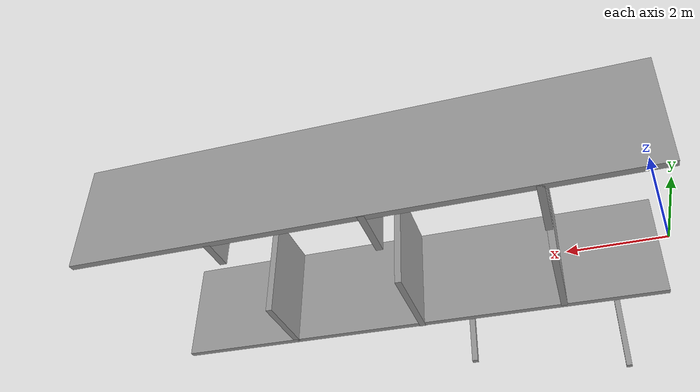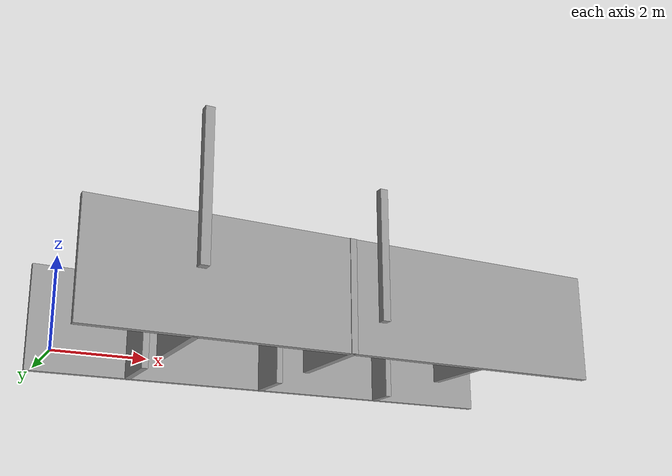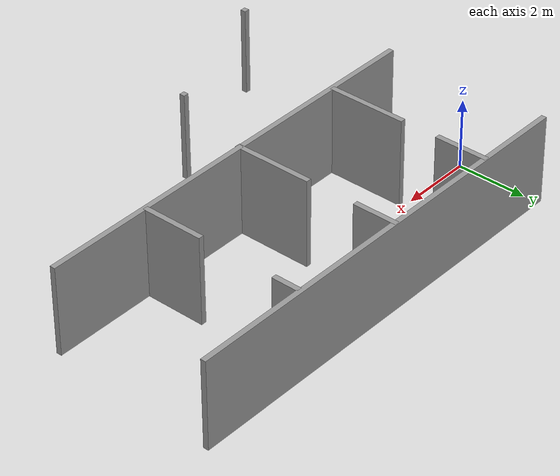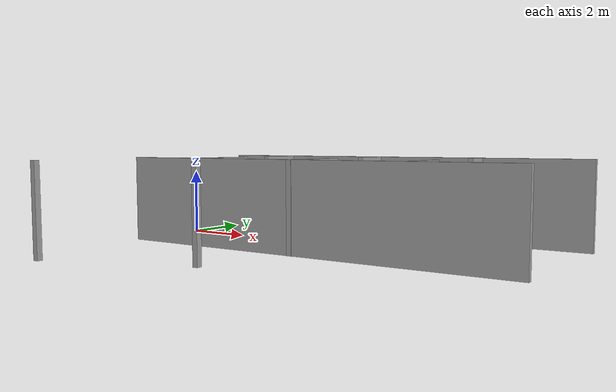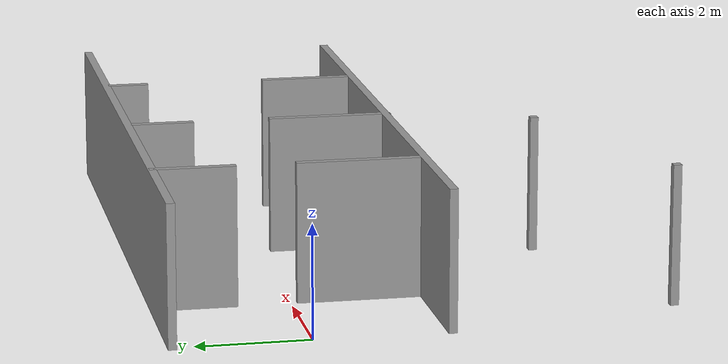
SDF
<?xml version='1.0'?>
<sdf version='1.7'>
  <model name='labirynt'>
    <pose>5.99977 -2.06429 0 0 -0 0</pose>
    <link name='Wall_26'>
      <collision name='Wall_26_Collision'>
        <geometry>
          <box>
            <size>0.15 0.15 2.5</size>
          </box>
        </geometry>
        <pose>0 0 1.25 0 -0 0</pose>
      </collision>
      <visual name='Wall_26_Visual'>
        <pose>0 0 1.25 0 -0 0</pose>
        <geometry>
          <box>
            <size>0.15 0.15 2.5</size>
          </box>
        </geometry>
        <material>
          <script>
            <uri>file://media/materials/scripts/gazebo.material</uri>
            <name>Gazebo/Grey</name>
          </script>
          <ambient>1 1 1 1</ambient>
        </material>
        <meta>
          <layer>0</layer>
        </meta>
      </visual>
      <pose>-1.16154 -2.90547 0 0 -0 0</pose>
    </link>
    <link name='Wall_29'>
      <collision name='Wall_29_Collision'>
        <geometry>
          <box>
            <size>0.15 0.15 2.5</size>
          </box>
        </geometry>
        <pose>0 0 1.25 0 -0 0</pose>
      </collision>
      <visual name='Wall_29_Visual'>
        <pose>0 0 1.25 0 -0 0</pose>
        <geometry>
          <box>
            <size>0.15 0.15 2.5</size>
          </box>
        </geometry>
        <material>
          <script>
            <uri>file://media/materials/scripts/gazebo.material</uri>
            <name>Gazebo/Grey</name>
          </script>
          <ambient>1 1 1 1</ambient>
        </material>
        <meta>
          <layer>0</layer>
        </meta>
      </visual>
      <pose>-5.1237 -4.4346 0 0 -0 0</pose>
    </link>
    <link name='Wall_49'>
      <collision name='Wall_49_Collision'>
        <geometry>
          <box>
            <size>12 0.15 2.5</size>
          </box>
        </geometry>
        <pose>0 0 1.25 0 -0 0</pose>
      </collision>
      <visual name='Wall_49_Visual'>
        <pose>0 0 1.25 0 -0 0</pose>
        <geometry>
          <box>
            <size>12 0.15 2.5</size>
          </box>
        </geometry>
        <material>
          <script>
            <uri>file://media/materials/scripts/gazebo.material</uri>
            <name>Gazebo/Grey</name>
          </script>
          <ambient>1 1 1 1</ambient>
        </material>
        <meta>
          <layer>0</layer>
        </meta>
      </visual>
      <pose>-0.085325 -0.313174 0 0 -0 0</pose>
    </link>
    <link name='Wall_53'>
      <collision name='Wall_53_Collision'>
        <geometry>
          <box>
            <size>12.25 0.15 2.5</size>
          </box>
        </geometry>
        <pose>0 0 1.25 0 -0 0</pose>
      </collision>
      <visual name='Wall_53_Visual'>
        <pose>0 0 1.25 0 -0 0</pose>
        <geometry>
          <box>
            <size>12.25 0.15 2.5</size>
          </box>
        </geometry>
        <material>
          <script>
            <uri>file://media/materials/scripts/gazebo.material</uri>
            <name>Gazebo/Grey</name>
          </script>
          <ambient>1 1 1 1</ambient>
        </material>
        <meta>
          <layer>0</layer>
        </meta>
      </visual>
      <pose>0 4.4346 0 0 -0 0</pose>
    </link>
    <link name='Wall_55'>
      <collision name='Wall_55_Collision'>
        <geometry>
          <box>
            <size>1.5 0.15 2.5</size>
          </box>
        </geometry>
        <pose>0 0 1.25 0 -0 0</pose>
      </collision>
      <visual name='Wall_55_Visual'>
        <pose>0 0 1.25 0 -0 0</pose>
        <geometry>
          <box>
            <size>1.5 0.15 2.5</size>
          </box>
        </geometry>
        <material>
          <script>
            <uri>file://media/materials/scripts/gazebo.material</uri>
            <name>Gazebo/Grey</name>
          </script>
          <ambient>1 1 1 1</ambient>
        </material>
        <meta>
          <layer>0</layer>
        </meta>
      </visual>
      <pose>-3.76207 3.73315 0 0 -0 -1.5708</pose>
    </link>
    <link name='Wall_58'>
      <collision name='Wall_58_Collision'>
        <geometry>
          <box>
            <size>2.25 0.15 2.5</size>
          </box>
        </geometry>
        <pose>0 0 1.25 0 -0 0</pose>
      </collision>
      <visual name='Wall_58_Visual'>
        <pose>0 0 1.25 0 -0 0</pose>
        <geometry>
          <box>
            <size>2.25 0.15 2.5</size>
          </box>
        </geometry>
        <material>
          <script>
            <uri>file://media/materials/scripts/gazebo.material</uri>
            <name>Gazebo/Grey</name>
          </script>
          <ambient>1 1 1 1</ambient>
        </material>
        <meta>
          <layer>0</layer>
        </meta>
      </visual>
      <pose>-3.75274 0.817185 0 0 -0 1.5708</pose>
    </link>
    <link name='Wall_75'>
      <collision name='Wall_75_Collision'>
        <geometry>
          <box>
            <size>1.25 0.15 2.5</size>
          </box>
        </geometry>
        <pose>0 0 1.25 0 -0 0</pose>
      </collision>
      <visual name='Wall_75_Visual'>
        <pose>0 0 1.25 0 -0 0</pose>
        <geometry>
          <box>
            <size>1.25 0.15 2.5</size>
          </box>
        </geometry>
        <material>
          <script>
            <uri>file://media/materials/scripts/gazebo.material</uri>
            <name>Gazebo/Grey</name>
          </script>
          <ambient>1 1 1 1</ambient>
        </material>
        <meta>
          <layer>0</layer>
        </meta>
      </visual>
      <pose>-0.36384 3.86056 0 0 -0 -1.5708</pose>
    </link>
    <link name='Wall_80'>
      <collision name='Wall_80_Collision'>
        <geometry>
          <box>
            <size>2.25 0.15 2.5</size>
          </box>
        </geometry>
        <pose>0 0 1.25 0 -0 0</pose>
      </collision>
      <visual name='Wall_80_Visual'>
        <pose>0 0 1.25 0 -0 0</pose>
        <geometry>
          <box>
            <size>2.25 0.15 2.5</size>
          </box>
        </geometry>
        <material>
          <script>
            <uri>file://media/materials/scripts/gazebo.material</uri>
            <name>Gazebo/Grey</name>
          </script>
          <ambient>1 1 1 1</ambient>
        </material>
        <meta>
          <layer>0</layer>
        </meta>
      </visual>
      <pose>-0.34716 0.718814 0 0 -0 1.5708</pose>
    </link>
    <link name='Wall_89'>
      <collision name='Wall_89_Collision'>
        <geometry>
          <box>
            <size>0.75 0.15 2.5</size>
          </box>
        </geometry>
        <pose>0 0 1.25 0 -0 0</pose>
      </collision>
      <visual name='Wall_89_Visual'>
        <pose>0 0 1.25 0 -0 0</pose>
        <geometry>
          <box>
            <size>0.75 0.15 2.5</size>
          </box>
        </geometry>
        <material>
          <script>
            <uri>file://media/materials/scripts/gazebo.material</uri>
            <name>Gazebo/Grey</name>
          </script>
          <ambient>1 1 1 1</ambient>
        </material>
        <meta>
          <layer>0</layer>
        </meta>
      </visual>
      <pose>2.95154 4.01539 0 0 -0 -1.5708</pose>
    </link>
    <link name='Wall_91'>
      <collision name='Wall_91_Collision'>
        <geometry>
          <box>
            <size>1.75 0.15 2.5</size>
          </box>
        </geometry>
        <pose>0 0 1.25 0 -0 0</pose>
      </collision>
      <visual name='Wall_91_Visual'>
        <pose>0 0 1.25 0 -0 0</pose>
        <geometry>
          <box>
            <size>1.75 0.15 2.5</size>
          </box>
        </geometry>
        <material>
          <script>
            <uri>file://media/materials/scripts/gazebo.material</uri>
            <name>Gazebo/Grey</name>
          </script>
          <ambient>1 1 1 1</ambient>
        </material>
        <meta>
          <layer>0</layer>
        </meta>
      </visual>
      <pose>2.92981 0.564898 0 0 -0 1.5708</pose>
    </link>
    <static>1</static>
  </model>
</sdf>
